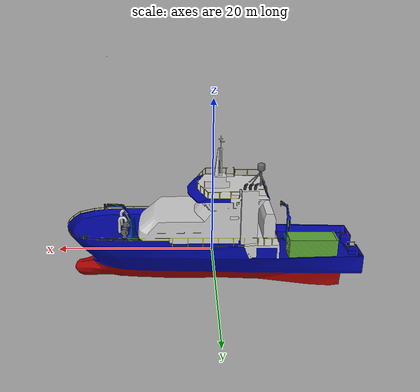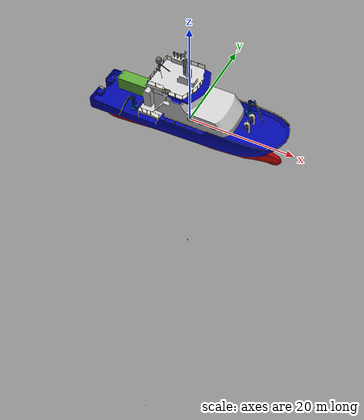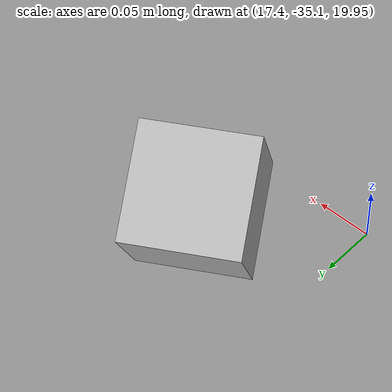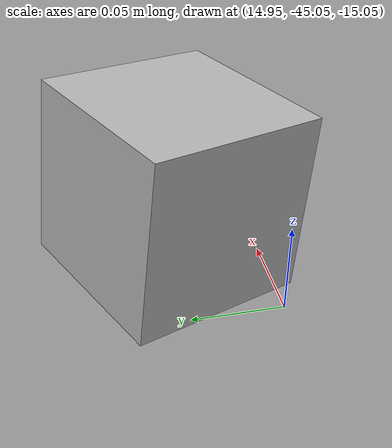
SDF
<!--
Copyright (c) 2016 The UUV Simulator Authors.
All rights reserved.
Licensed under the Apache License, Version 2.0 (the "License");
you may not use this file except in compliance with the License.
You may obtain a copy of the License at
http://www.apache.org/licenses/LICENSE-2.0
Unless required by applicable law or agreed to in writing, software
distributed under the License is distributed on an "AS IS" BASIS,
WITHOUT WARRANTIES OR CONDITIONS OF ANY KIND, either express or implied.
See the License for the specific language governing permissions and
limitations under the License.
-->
<sdf version="1.4">
 <world name="ocean_revival_park">
  <physics name="default_physics" default="true" type="ode">
   <max_step_size>0.004</max_step_size>
   <real_time_factor>1</real_time_factor>
   <real_time_update_rate>250</real_time_update_rate>
   <ode><solver><type>world</type><iters>200</iters><sor>1.2</sor></solver></ode>
  </physics>
  <scene>
   <ambient>0.01 0.01 0.01 1.0</ambient>
   <sky><clouds><speed>12</speed></clouds></sky>
   <shadows>0</shadows>
   <fog>
    <color>0.1 0.2 0.3 1.0</color>
    <type>linear</type>
    <density>0.1</density>
    <start>10</start>
    <end>100</end>
   </fog>
  </scene>
  <spherical_coordinates>
   <latitude_deg>37.08835</latitude_deg>
   <longitude_deg>-8.58601</longitude_deg>
  </spherical_coordinates>
  <light type="directional" name="sun_diffuse_1">
   <pose>-200 -200 100 0 0 0</pose>
   <diffuse>0.6 0.6 0.6 1</diffuse>
   <specular>0 0 0 1</specular>
   <direction>-0.3 -0.3 -1</direction>
  </light>
  <light type="directional" name="sun_diffuse_2">
   <pose>-100 50 200 0 0 0</pose>
   <diffuse>0.6 0.6 0.6 1</diffuse>
   <specular>0 0 0 1</specular>
   <direction>-0.3 -0.3 -1</direction>
  </light>
  <light type="directional" name="sun_diffuse_3">
   <pose>-150 -130 50 0 0 0</pose>
   <diffuse>0.6 0.6 0.6 1</diffuse>
   <specular>0.2 0.2 0.2 1</specular>
   <direction>0.5 0.5 -1</direction>
  </light>
  <include><uri>model://ned_frame</uri></include>
  <include><uri>model://aurora_static</uri><pose>0 0 -2 0 0 0</pose></include>
  <plugin name="underwater_current_plugin" filename="libuuv_underwater_current_ros_plugin.so">
   <namespace>hydrodynamics</namespace>
   <constant_current>
    <topic>current_velocity</topic>
    <velocity><mean>0</mean><min>0</min><max>5</max><mu>0.0</mu><noiseAmp>0.0</noiseAmp></velocity>
    <horizontal_angle>
     <mean>0</mean>
     <min>-3.141592653589793238</min>
     <max>3.141592653589793238</max>
     <mu>0.0</mu>
     <noiseAmp>0.0</noiseAmp>
    </horizontal_angle>
    <vertical_angle>
     <mean>0</mean>
     <min>-3.141592653589793238</min>
     <max>3.141592653589793238</max>
     <mu>0.0</mu>
     <noiseAmp>0.0</noiseAmp>
    </vertical_angle>
   </constant_current>
  </plugin>
  <plugin name="sc_interface" filename="libuuv_sc_ros_interface_plugin.so"/>
  <model name="camera_underwater">
   <static>true</static>
   <pose>15 -45 -15 0 -0.1 2.0</pose>
   <link name="link">
    <visual name="visual"><geometry><box><size>0.1 0.1 0.1</size></box></geometry></visual>
    <sensor name="underwater_camera" type="camera">
     <camera>
      <horizontal_fov>1.5</horizontal_fov>
      <image><width>960</width><height>540</height></image>
      <clip><near>0.1</near><far>1000</far></clip>
     </camera>
     <always_on>1</always_on>
     <update_rate>30</update_rate>
     <plugin name="camera_below" filename="libgazebo_ros_camera.so">
      <alwaysOn>true</alwaysOn>
      <updateRate>30.0</updateRate>
      <cameraName>camera_underwater</cameraName>
      <imageTopicName>camera_image</imageTopicName>
      <cameraInfoTopicName>camera_info</cameraInfoTopicName>
      <frameName>camera_link</frameName>
      <hackBaseline>0.07</hackBaseline>
      <distortionK1>0.0</distortionK1>
      <distortionK2>0.0</distortionK2>
      <distortionK3>0.0</distortionK3>
      <distortionT1>0.0</distortionT1>
      <distortionT2>0.0</distortionT2>
     </plugin>
    </sensor>
   </link>
  </model>
  <model name="camera_surface">
   <static>true</static>
   <pose>17.5 -35 20 0 0.55 2.1</pose>
   <link name="link">
    <visual name="visual"><geometry><box><size>0.1 0.1 0.1</size></box></geometry></visual>
    <sensor name="camera_surface" type="camera">
     <camera>
      <horizontal_fov>1.5</horizontal_fov>
      <image><width>960</width><height>540</height></image>
      <clip><near>0.1</near><far>1000</far></clip>
     </camera>
     <always_on>1</always_on>
     <update_rate>30</update_rate>
     <plugin name="camera_surface" filename="libgazebo_ros_camera.so">
      <alwaysOn>true</alwaysOn>
      <updateRate>30.0</updateRate>
      <cameraName>camera_surface</cameraName>
      <imageTopicName>camera_image</imageTopicName>
      <cameraInfoTopicName>camera_info</cameraInfoTopicName>
      <frameName>camera_link</frameName>
      <hackBaseline>0.07</hackBaseline>
      <distortionK1>0.0</distortionK1>
      <distortionK2>0.0</distortionK2>
      <distortionK3>0.0</distortionK3>
      <distortionT1>0.0</distortionT1>
      <distortionT2>0.0</distortionT2>
     </plugin>
    </sensor>
   </link>
  </model>
 </world>
</sdf>

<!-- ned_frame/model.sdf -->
<sdf version='1.5'>
    <model name="world_ned">

      <pose>0 0 0 0 0 0</pose>
      <static>true</static>

      <link name="world_ned">
        <gravity>0</gravity>
        <pose>0 0 0 3.14159265359 0 1.5707963267948966</pose>

        <visual name="N_visual">
          <pose>0.25 0 0 1.5707963267948966 0 1.5707963267948966</pose>
          <geometry>
            <cylinder>
              <radius>0.01</radius>
              <length>0.5</length>
            </cylinder>
          </geometry>
          <material>
            <script>
              <uri>file://media/materials/scripts/gazebo.material</uri>
              <name>Gazebo/Red</name>
            </script>
          </material>
        </visual>

        <visual name="E_visual">
          <pose>0 0.25 0 1.5707963267948966 0 0</pose>
          <geometry>
            <cylinder>
              <radius>0.01</radius>
              <length>0.5</length>
            </cylinder>
          </geometry>
          <material>
            <script>
              <uri>file://media/materials/scripts/gazebo.material</uri>
              <name>Gazebo/Green</name>
            </script>
          </material>
        </visual>

        <visual name="D_visual">
          <pose>0 0 0.25 0 0 0</pose>
          <geometry>
            <cylinder>
              <radius>0.01</radius>
              <length>0.5</length>
            </cylinder>
          </geometry>
          <material>
            <script>
              <uri>file://media/materials/scripts/gazebo.material</uri>
              <name>Gazebo/Blue</name>
            </script>
          </material>
        </visual>
      </link>
    </model>
</sdf>

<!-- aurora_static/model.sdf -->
<sdf version="1.5">
  <model name="aurora">
    <static>true</static>
    <link name="link">
      <collision name="aurora_collision">
        <pose>0 0 0 0 0 1.57</pose>
        <geometry>
          <mesh>
            <uri>model://aurora_static/meshes/aurora_collision.stl</uri>
          </mesh>
        </geometry>
      </collision>

      <visual name="aurora_visual">
        <cast_shadows>false</cast_shadows>
        <pose>0 0 0 0 0 1.57</pose>
        <geometry>
          <mesh>
            <uri>model://aurora_static/meshes/aurora.dae</uri>
          </mesh>
        </geometry>
      </visual>
    </link>
  </model>
</sdf>
